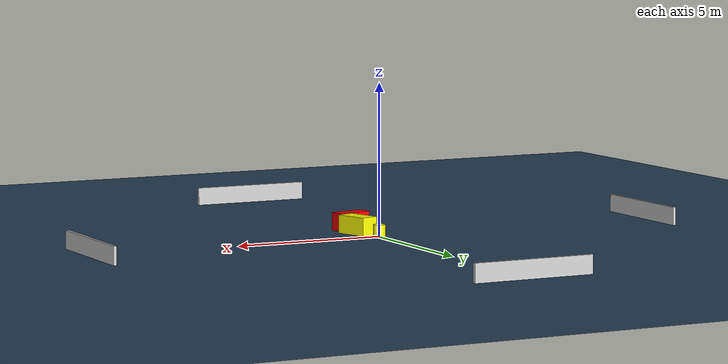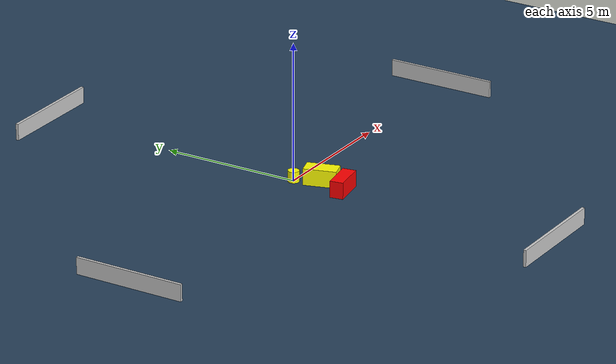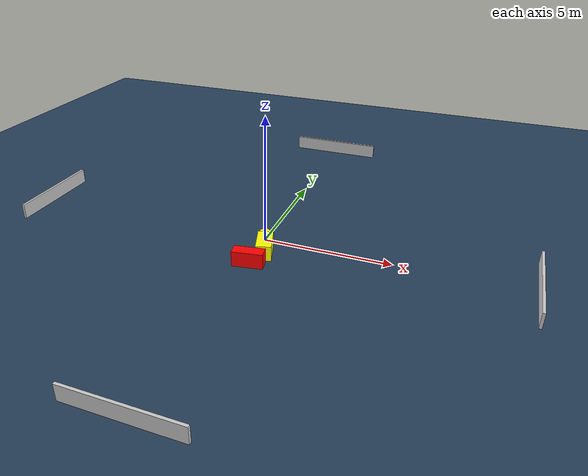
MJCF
<?xml version="1.0" ?>
<mujoco model="generated_environment">
  <option timestep="0.01" integrator="RK4" cone="elliptic"/>
  <default>
    <geom density="1"/>
  </default>
  <asset>
    <texture builtin="gradient" height="3072" name="skybox" rgb1="0.3 0.5 0.7" rgb2="0 0 0" type="skybox" width="512"/>
    <texture builtin="checker" height="300" name="groundplane" rgb1="0.2 0.3 0.4" rgb2="0.1 0.2 0.3" type="2d" width="300"/>
    <material name="groundplane" reflectance="0.2" texrepeat="5 5" texture="groundplane"/>
  </asset>
  <worldbody>
    <light dir="0 0 -1" directional="true" pos="0 0 1.5"/>
    <geom condim="3" friction="0.5 0.005 0.001" material="groundplane" name="floor" pos="0 0 0" size="0 0 0.05" type="plane"/>
    <body name="walls">
      <geom name="wall_1" condim="4" pos="-10.0 0.0 0.3" rgba="0.800000011920929 0.800000011920929 0.800000011920929 1.0" size="0.05 2.0 0.3" type="box"/>
      <geom name="wall_2" condim="4" pos="10.0 0.0 0.3" rgba="0.800000011920929 0.800000011920929 0.800000011920929 1.0" size="0.05 2.0 0.3" type="box"/>
      <geom name="wall_3" condim="4" pos="0.0 -10.0 0.3" rgba="0.800000011920929 0.800000011920929 0.800000011920929 1.0" size="2.0 0.05 0.3" type="box"/>
      <geom name="wall_4" condim="4" pos="0.0 10.0 0.3" rgba="0.800000011920929 0.800000011920929 0.800000011920929 1.0" size="2.0 0.05 0.3" type="box"/>
    </body>
    <body name="robot">
      <joint name="joint_x" type="slide" pos="0 0 0" axis="1 0 0"/>
      <joint name="joint_y" type="slide" pos="0 0 0" axis="0 1 0"/>
      <geom name="robot" type="cylinder" pos="0.0 0.0 0.2" size="0.2 0.2 0.0" mass="5.0" friction="1.0 0.005 0.0001" condim="4" rgba="1.0 1.0 0.0 1.0"/>
    </body>
    <body name="obstacle_1_movable">
      <geom name="obstacle_1_movable" condim="4" pos="0.33105688401131783 -0.907435266668549 0.3" euler="0 0 286.841384739529" friction="0.0 0.005 0.001" rgba="1.0 1.0 0.0 1.0" size="0.5831392408553746 0.2955485951639406 0.3" type="box" mass="0.1"/>
      <joint type="free"/>
    </body>
    <body name="obstacle_2_static">
      <geom name="obstacle_2_static" condim="4" pos="0.08940832554351812 -1.8926866188791638 0.3" euler="0 0 9.056571763654318" friction="0.0 0.005 0.001" rgba="1.0 0.0 0.0 1.0" size="0.5858981105601971 0.23598453430032573 0.3" type="box"/>
    </body>
  </worldbody>
  <actuator>
    <motor name="actuator_x" joint="joint_x" gear="1" ctrlrange="-1 1"/>
    <motor name="actuator_y" joint="joint_y" gear="1" ctrlrange="-1 1"/>
  </actuator>
</mujoco>
